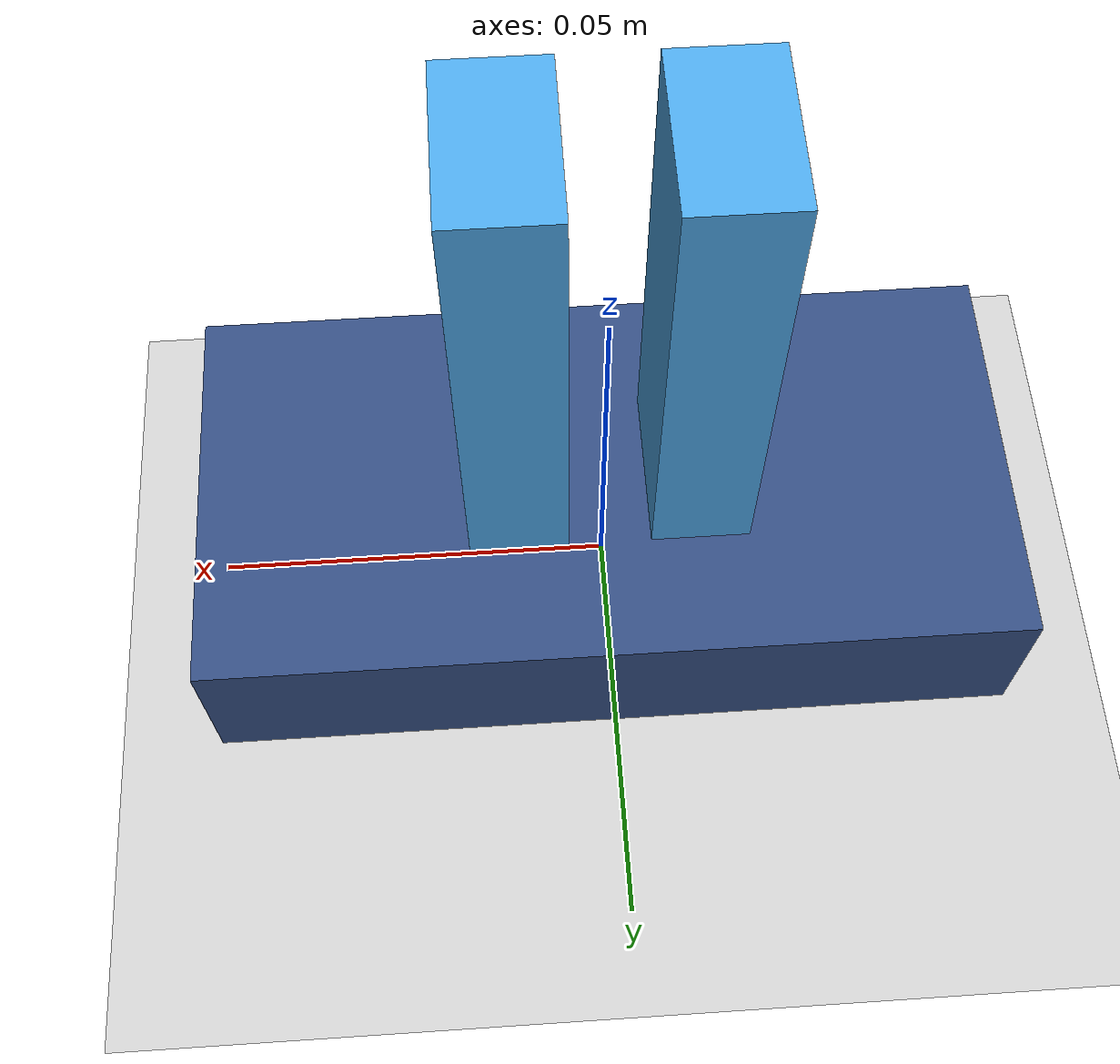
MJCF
<?xml version='1.0' encoding='utf-8'?>
<mujoco model="proposed_parallel_gripper">
  <compiler angle="radian" />
  <option timestep="0.001" gravity="0 0 -9.81" />
  <default>
    <geom friction="0.7 0.005 0.0001" condim="3" />
  </default>
  <worldbody>
    <geom name="floor" type="plane" size="1 1 0.1" rgba="0.8 0.8 0.8 1" />
    <geom name="base" type="box" pos="0 0 0.01" size="0.05 0.025 0.01" rgba="0.2 0.3 0.5 1" />
    <body name="left" pos="-0.011 0 0.05">
      <joint name="left_slide" type="slide" axis="-1 0 0" range="0 0.025" limited="true" damping="1" frictionloss="0.1" />
      <geom type="box" size="0.006 0.01 0.03" mass="0.04" rgba="0.3 0.65 0.9 1" />
    </body>
    <body name="right" pos="0.011 0 0.05">
      <joint name="right_slide" type="slide" axis="1 0 0" range="0 0.025" limited="true" damping="1" frictionloss="0.1" />
      <geom type="box" size="0.006 0.01 0.03" mass="0.04" rgba="0.3 0.65 0.9 1" />
    </body>
  </worldbody>
  <equality>
    <joint joint1="right_slide" joint2="left_slide" polycoef="0 1 0 0 0" />
  </equality>
  <actuator>
    <motor name="jaw_drive" joint="left_slide" gear="1" ctrllimited="true" ctrlrange="-5 5" />
  </actuator>
  <keyframe>
    <key name="open" qpos="0.025 0.025" />
  </keyframe>
</mujoco>
